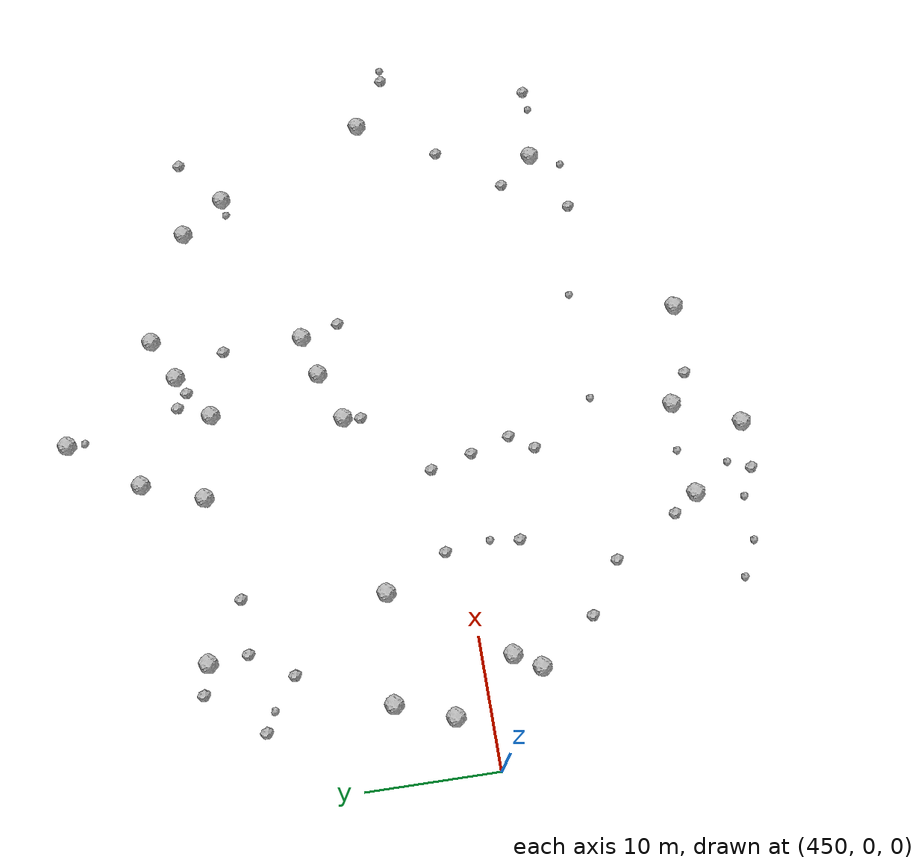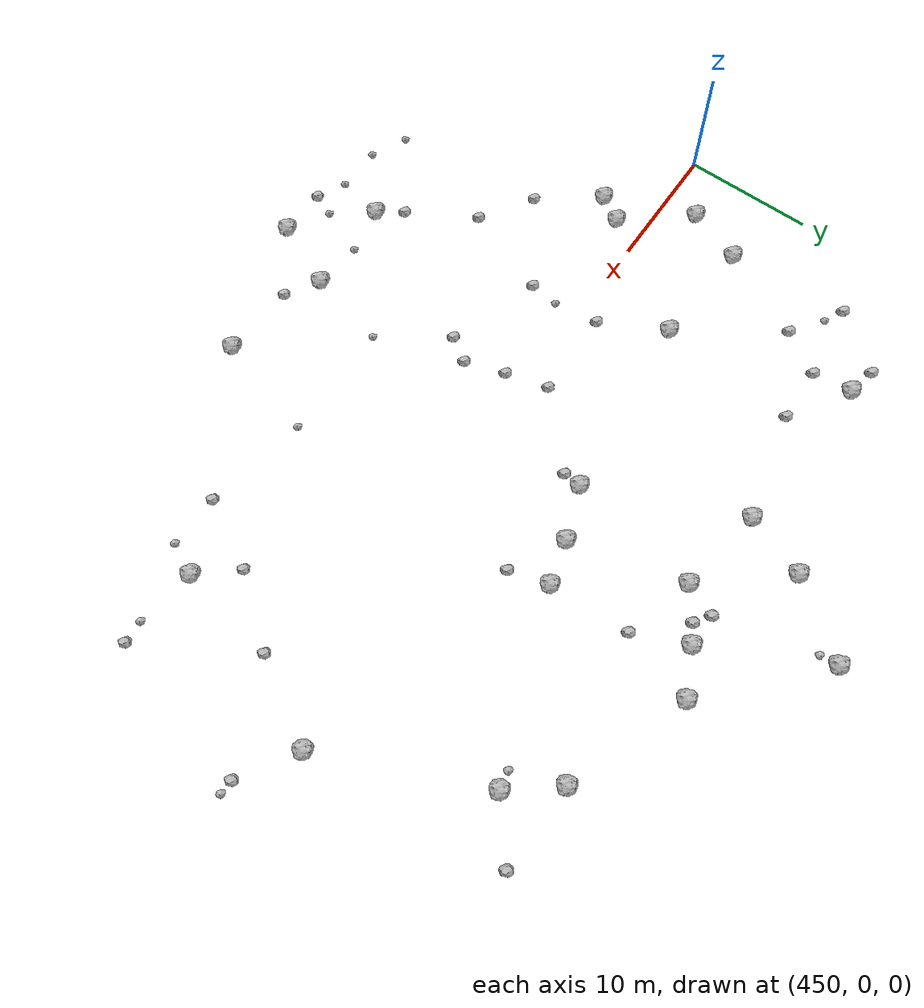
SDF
<sdf version="1.6">
 <world name="default">
  <include><uri>model://sun</uri></include>
  <model name="rock1_12_4">
   <include><uri>model://rock1</uri><pose>464.2248443768082 6.366141908984744 0.5 0 0 0</pose></include>
  </model>
  <model name="rock1_12_5">
   <include><uri>model://rock1</uri><pose>475.32925805007966 23.833511581299746 0.5 0 0 0</pose></include>
  </model>
  <model name="rock1_12_6">
   <include><uri>model://rock1</uri><pose>484.1379289998856 -19.796994492012338 0.5 0 0 0</pose></include>
  </model>
  <model name="rock1_12_7">
   <include><uri>model://rock1</uri><pose>487.1447538070451 22.008367954602676 0.5 0 0 0</pose></include>
  </model>
  <model name="rock1_12_8">
   <include><uri>model://rock1</uri><pose>480.2489217866155 17.945217402718335 0.5 0 0 0</pose></include>
  </model>
  <model name="rock1_12_9">
   <include><uri>model://rock1</uri><pose>457.06198352644583 -4.205268024283971 0.5 0 0 0</pose></include>
  </model>
  <model name="rock1_12_10">
   <include><uri>model://rock1</uri><pose>485.7821863915178 10.115130861029954 0.5 0 0 0</pose></include>
  </model>
  <model name="rock1_12_11">
   <include><uri>model://rock1</uri><pose>473.67790980524853 -22.97308293233223 0.5 0 0 0</pose></include>
  </model>
  <model name="rock1_12_12">
   <include><uri>model://rock1</uri><pose>483.8202476363117 20.369838922844494 0.5 0 0 0</pose></include>
  </model>
  <model name="rock1_12_13">
   <include><uri>model://rock1</uri><pose>479.3580912818313 29.21779430506006 0.5 0 0 0</pose></include>
  </model>
  <model name="rock1_12_14">
   <include><uri>model://rock1</uri><pose>468.513161222836 -18.219549093553226 0.5 0 0 0</pose></include>
  </model>
  <model name="rock1_12_15">
   <include><uri>model://rock1</uri><pose>460.8674877353514 20.0868396391693 0.5 0 0 0</pose></include>
  </model>
  <model name="rock1_12_16">
   <include><uri>model://rock1</uri><pose>496.28184971706116 18.572847501305127 0.5 0 0 0</pose></include>
  </model>
  <model name="rock1_12_17">
   <include><uri>model://rock1</uri><pose>473.60693595723313 19.090016074360335 0.5 0 0 0</pose></include>
  </model>
  <model name="rock1_12_18">
   <include><uri>model://rock1</uri><pose>504.25537688582097 3.157517992228307 0.5 0 0 0</pose></include>
  </model>
  <model name="rock1_12_19">
   <include><uri>model://rock1</uri><pose>482.4727182123222 9.227378902995198 0.5 0 0 0</pose></include>
  </model>
  <model name="rock1_12_20">
   <include><uri>model://rock1</uri><pose>475.9331250364035 -17.889458002137566 0.5 0 0 0</pose></include>
  </model>
  <model name="rock1_12_21">
   <include><uri>model://rock1</uri><pose>499.3691405796767 -10.73335017332177 0.5 0 0 0</pose></include>
  </model>
  <model name="rock1_12_22">
   <include><uri>model://rock1</uri><pose>454.3407490437818 2.6608936514806985 0.5 0 0 0</pose></include>
  </model>
  <model name="rock1_12_23">
   <include><uri>model://rock1</uri><pose>478.5341324066897 7.744781314688623 0.5 0 0 0</pose></include>
  </model>
  <model name="rock1_12_24">
   <include><uri>model://rock1</uri><pose>455.8948973307193 6.976327508133949 0.5 0 0 0</pose></include>
  </model>
  <model name="rock1_12_25">
   <include><uri>model://rock1</uri><pose>458.27629711103657 -2.237127317765065 0.5 0 0 0</pose></include>
  </model>
  <model name="rock1_12_26">
   <include><uri>model://rock1</uri><pose>498.98808544519136 15.157088434247939 0.5 0 0 0</pose></include>
  </model>
  <model name="rock2_12_0">
   <include><uri>model://rock2</uri><pose>455.2294851991774 16.419122239144663 0.3 0 0 0</pose></include>
  </model>
  <model name="rock2_12_1">
   <include><uri>model://rock2</uri><pose>475.16369037095893 -4.797811036224818 0.3 0 0 0</pose></include>
  </model>
  <model name="rock2_12_2">
   <include><uri>model://rock2</uri><pose>461.12451624481264 17.109339919946585 0.3 0 0 0</pose></include>
  </model>
  <model name="rock2_12_3">
   <include><uri>model://rock2</uri><pose>478.3563895955806 6.380624818160477 0.3 0 0 0</pose></include>
  </model>
  <model name="rock2_12_4">
   <include><uri>model://rock2</uri><pose>460.29030887851053 -8.65556932606853 0.3 0 0 0</pose></include>
  </model>
  <model name="rock2_12_5">
   <include><uri>model://rock2</uri><pose>466.85110273759136 -4.2590069145968315 0.3 0 0 0</pose></include>
  </model>
  <model name="rock2_12_6">
   <include><uri>model://rock2</uri><pose>473.96298886783836 -6.659585109954939 0.3 0 0 0</pose></include>
  </model>
  <model name="rock2_12_7">
   <include><uri>model://rock2</uri><pose>474.2013618128308 -1.6968267161711132 0.3 0 0 0</pose></include>
  </model>
  <model name="rock2_12_8">
   <include><uri>model://rock2</uri><pose>464.22594616284647 -11.250955832067604 0.3 0 0 0</pose></include>
  </model>
  <model name="rock2_12_9">
   <include><uri>model://rock2</uri><pose>469.92988789503806 -22.932118099026113 0.3 0 0 0</pose></include>
  </model>
  <model name="rock2_12_10">
   <include><uri>model://rock2</uri><pose>465.33077088147763 17.211981326766534 0.3 0 0 0</pose></include>
  </model>
  <model name="rock2_12_11">
   <include><uri>model://rock2</uri><pose>467.15611391689487 -16.35056463424381 0.3 0 0 0</pose></include>
  </model>
  <model name="rock2_12_12">
   <include><uri>model://rock2</uri><pose>485.4736700932245 16.42830497721735 0.3 0 0 0</pose></include>
  </model>
  <model name="rock2_12_13">
   <include><uri>model://rock2</uri><pose>486.577073080206 7.12719833491451 0.3 0 0 0</pose></include>
  </model>
  <model name="rock2_12_14">
   <include><uri>model://rock2</uri><pose>481.253749750792 20.478965193642146 0.3 0 0 0</pose></include>
  </model>
  <model name="rock2_12_15">
   <include><uri>model://rock2</uri><pose>473.33959488079284 1.5673295598566916 0.3 0 0 0</pose></include>
  </model>
  <model name="rock2_12_16">
   <include><uri>model://rock2</uri><pose>502.7369636361517 18.353399920996694 0.3 0 0 0</pose></include>
  </model>
  <model name="rock2_12_17">
   <include><uri>model://rock2</uri><pose>482.41190397565407 19.65473891273558 0.3 0 0 0</pose></include>
  </model>
  <model name="rock2_12_18">
   <include><uri>model://rock2</uri><pose>508.3994493075315 0.5543457292742069 0.3 0 0 0</pose></include>
  </model>
  <model name="rock2_12_19">
   <include><uri>model://rock2</uri><pose>459.0863733976548 13.887296609734044 0.3 0 0 0</pose></include>
  </model>
  <model name="rock2_12_20">
   <include><uri>model://rock2</uri><pose>478.3940908190503 -19.480280764259255 0.3 0 0 0</pose></include>
  </model>
  <model name="rock2_12_21">
   <include><uri>model://rock2</uri><pose>500.74814323325046 -3.0208208031358197 0.3 0 0 0</pose></include>
  </model>
  <model name="rock2_12_22">
   <include><uri>model://rock2</uri><pose>505.56618247034663 -11.25573236834201 0.3 0 0 0</pose></include>
  </model>
  <model name="rock2_12_23">
   <include><uri>model://rock2</uri><pose>497.00810779775213 -7.96290782431894 0.3 0 0 0</pose></include>
  </model>
  <model name="rock2_12_24">
   <include><uri>model://rock2</uri><pose>466.70674887064945 1.4940087879196682 0.3 0 0 0</pose></include>
  </model>
  <model name="rock2_12_25">
   <include><uri>model://rock2</uri><pose>458.6050691534805 20.661730179207588 0.3 0 0 0</pose></include>
  </model>
  <model name="rock2_12_26">
   <include><uri>model://rock2</uri><pose>494.2980303681686 -13.08733140959571 0.3 0 0 0</pose></include>
  </model>
  <model name="rock3_12_0">
   <include><uri>model://rock3</uri><pose>477.3831059671206 -11.737938349246463 0.2 0 0 0</pose></include>
  </model>
  <model name="rock3_12_1">
   <include><uri>model://rock3</uri><pose>467.71458467167946 -21.945298934098957 0.2 0 0 0</pose></include>
  </model>
  <model name="rock3_12_2">
   <include><uri>model://rock3</uri><pose>470.6144242505598 -21.251749953858752 0.2 0 0 0</pose></include>
  </model>
  <model name="rock3_12_3">
   <include><uri>model://rock3</uri><pose>456.6883489237722 15.63152651164571 0.2 0 0 0</pose></include>
  </model>
  <model name="rock3_12_4">
   <include><uri>model://rock3</uri><pose>498.2824167254779 -13.20048759401589 0.2 0 0 0</pose></include>
  </model>
  <model name="rock3_12_5">
   <include><uri>model://rock3</uri><pose>479.3925694960854 27.86259502836939 0.2 0 0 0</pose></include>
  </model>
  <model name="rock3_12_6">
   <include><uri>model://rock3</uri><pose>461.4861313682713 -20.577264472457884 0.2 0 0 0</pose></include>
  </model>
  <model name="rock3_12_7">
   <include><uri>model://rock3</uri><pose>486.39716314852365 -11.742009338547067 0.2 0 0 0</pose></include>
  </model>
  <model name="rock3_12_8">
   <include><uri>model://rock3</uri><pose>503.85578005464384 -11.435284359298596 0.2 0 0 0</pose></include>
  </model>
  <model name="rock3_12_9">
   <include><uri>model://rock3</uri><pose>472.113116423062 -17.603364920326868 0.2 0 0 0</pose></include>
  </model>
  <model name="rock3_12_10">
   <include><uri>model://rock3</uri><pose>464.21154863435873 -21.892051605972654 0.2 0 0 0</pose></include>
  </model>
  <model name="rock3_12_11">
   <include><uri>model://rock3</uri><pose>497.62183746405486 14.908608417874952 0.2 0 0 0</pose></include>
  </model>
  <model name="rock3_12_12">
   <include><uri>model://rock3</uri><pose>467.1220325655866 -2.0250229035666543 0.2 0 0 0</pose></include>
  </model>
  <model name="rock3_12_13">
   <include><uri>model://rock3</uri><pose>509.44009462040924 0.46496807563647025 0.2 0 0 0</pose></include>
  </model>
 </world>
</sdf>
